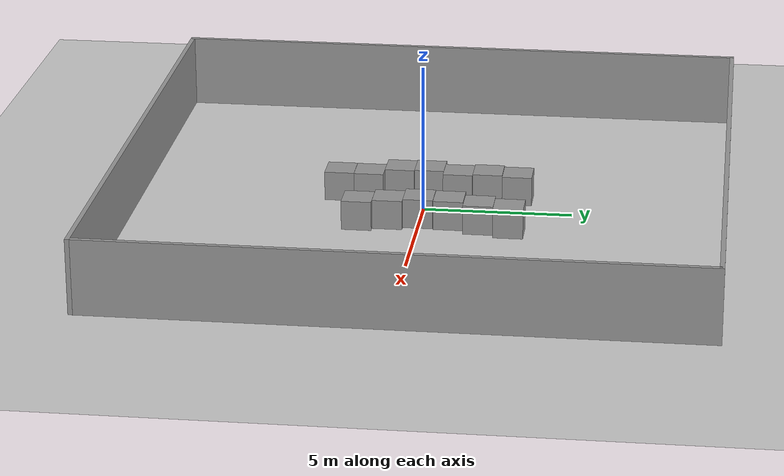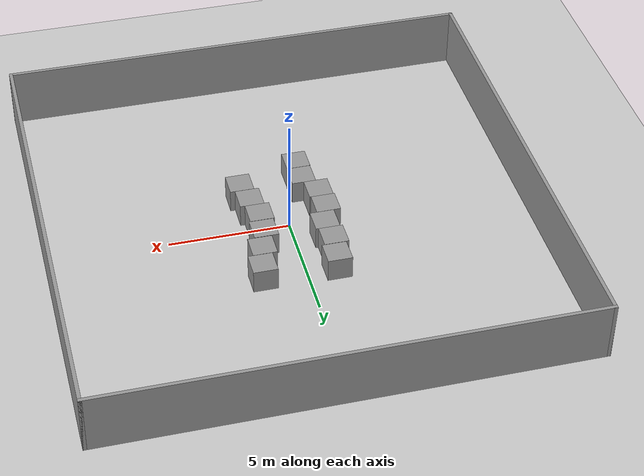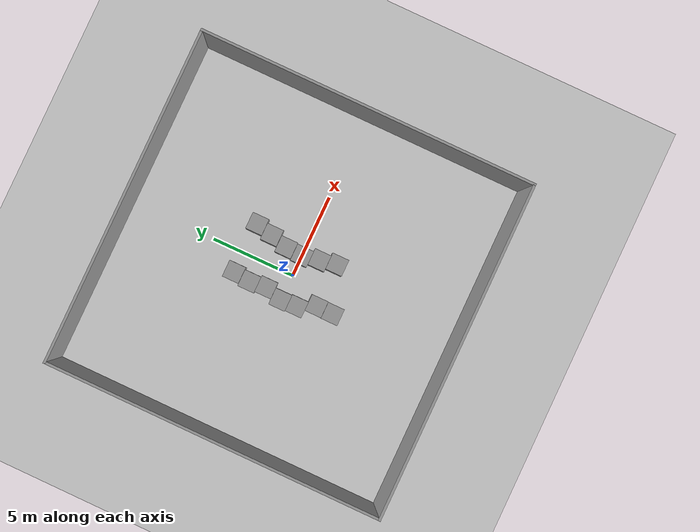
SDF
<sdf version="1.6">
 <world name="default">
  <light name="sun" type="directional">
   <pose>0 0 10 0 -0 0</pose>
   <diffuse>0.8 0.8 0.8 1</diffuse>
   <specular>0.1 0.1 0.1 1</specular>
   <attenuation>
    <range>1000</range>
    <constant>0.9</constant>
    <linear>0.01</linear>
    <quadratic>0.001</quadratic>
   </attenuation>
   <direction>-0.5 0.5 -1</direction>
  </light>
  <model name="ground_plane">
   <static>1</static>
   <link name="link">
    <collision name="collision">
     <geometry><plane><normal>0 0 1</normal><size>100 100</size></plane></geometry>
     <surface><friction><ode><mu>100</mu><mu2>50</mu2></ode></friction></surface>
    </collision>
    <visual name="visual">
     <cast_shadows>0</cast_shadows>
     <geometry><plane><normal>0 0 1</normal><size>100 100</size></plane></geometry>
     <material>
      <script><uri>file://media/materials/scripts/gazebo.material</uri><name>Gazebo/Grey</name></script>
     </material>
    </visual>
   </link>
  </model>
  <gravity>0 0 -9.8</gravity>
  <magnetic_field>6e-06 2.3e-05 -4.2e-05</magnetic_field>
  <atmosphere type="adiabatic"/>
  <physics name="default_physics" default="0" type="ode">
   <max_step_size>0.001</max_step_size>
   <real_time_factor>1</real_time_factor>
   <real_time_update_rate>1000</real_time_update_rate>
  </physics>
  <scene><ambient>0.4 0.4 0.4 1</ambient><background>0.7 0.7 0.7 1</background><shadows>1</shadows></scene>
  <spherical_coordinates>
   <surface_model>EARTH_WGS84</surface_model>
   <latitude_deg>0</latitude_deg>
   <longitude_deg>0</longitude_deg>
   <elevation>0</elevation>
   <heading_deg>0</heading_deg>
  </spherical_coordinates>
  <model name="20x20_walls">
   <pose>0.044518 0.1761 0 0 -0 0</pose>
   <link name="Wall_1">
    <collision name="Wall_1_Collision">
     <geometry><box><size>20 0.15 2.5</size></box></geometry>
     <pose>0 0 1.25 0 -0 0</pose>
    </collision>
    <visual name="Wall_1_Visual">
     <pose>0 0 1.25 0 -0 0</pose>
     <geometry><box><size>20 0.15 2.5</size></box></geometry>
     <material>
      <script><uri>file://media/materials/scripts/gazebo.material</uri><name>Gazebo/Grey</name></script>
      <ambient>0.976471 0.992157 1 1</ambient>
     </material>
     <meta><layer>0</layer></meta>
    </visual>
    <pose>0 9.925 0 0 -0 0</pose>
   </link>
   <link name="Wall_3">
    <collision name="Wall_3_Collision">
     <geometry><box><size>20 0.15 2.5</size></box></geometry>
     <pose>0 0 1.25 0 -0 0</pose>
    </collision>
    <visual name="Wall_3_Visual">
     <pose>0 0 1.25 0 -0 0</pose>
     <geometry><box><size>20 0.15 2.5</size></box></geometry>
     <material>
      <script><uri>file://media/materials/scripts/gazebo.material</uri><name>Gazebo/Grey</name></script>
      <ambient>0.976471 0.992157 1 1</ambient>
     </material>
     <meta><layer>0</layer></meta>
    </visual>
    <pose>9.925 0 0 0 0 -1.5708</pose>
   </link>
   <link name="Wall_4">
    <collision name="Wall_4_Collision">
     <geometry><box><size>20 0.15 2.5</size></box></geometry>
     <pose>0 0 1.25 0 -0 0</pose>
    </collision>
    <visual name="Wall_4_Visual">
     <pose>0 0 1.25 0 -0 0</pose>
     <geometry><box><size>20 0.15 2.5</size></box></geometry>
     <material>
      <script><uri>file://media/materials/scripts/gazebo.material</uri><name>Gazebo/Grey</name></script>
      <ambient>0.976471 0.992157 1 1</ambient>
     </material>
     <meta><layer>0</layer></meta>
    </visual>
    <pose>0 -9.925 0 0 -0 3.14159</pose>
   </link>
   <link name="Wall_5">
    <collision name="Wall_5_Collision">
     <geometry><box><size>20 0.15 2.5</size></box></geometry>
     <pose>0 0 1.25 0 -0 0</pose>
    </collision>
    <visual name="Wall_5_Visual">
     <pose>0 0 1.25 0 -0 0</pose>
     <geometry><box><size>20 0.15 2.5</size></box></geometry>
     <material>
      <script><uri>file://media/materials/scripts/gazebo.material</uri><name>Gazebo/Grey</name></script>
      <ambient>0.976471 0.992157 1 1</ambient>
     </material>
     <meta><layer>0</layer></meta>
    </visual>
    <pose>-9.925 0 0 0 -0 1.5708</pose>
   </link>
   <static>1</static>
  </model>
  <model name="unit_box_0">
   <pose>-1.50901 0.069016 0.499995 -1e-05 -0 0.00027</pose>
   <link name="link">
    <inertial>
     <mass>1</mass>
     <inertia>
      <ixx>0.166667</ixx>
      <ixy>0</ixy>
      <ixz>0</ixz>
      <iyy>0.166667</iyy>
      <iyz>0</iyz>
      <izz>0.166667</izz>
     </inertia>
    </inertial>
    <collision name="collision"><geometry><box><size>1 1 1</size></box></geometry></collision>
    <visual name="visual">
     <geometry><box><size>1 1 1</size></box></geometry>
     <material>
      <script><name>Gazebo/Grey</name><uri>file://media/materials/scripts/gazebo.material</uri></script>
     </material>
    </visual>
   </link>
  </model>
  <model name="unit_box_0_clone">
   <pose>-1.45755 -0.931028 0.499995 1e-05 -0 0.000304</pose>
   <link name="link">
    <inertial>
     <mass>1</mass>
     <inertia>
      <ixx>0.166667</ixx>
      <ixy>0</ixy>
      <ixz>0</ixz>
      <iyy>0.166667</iyy>
      <iyz>0</iyz>
      <izz>0.166667</izz>
     </inertia>
    </inertial>
    <collision name="collision"><geometry><box><size>1 1 1</size></box></geometry></collision>
    <visual name="visual">
     <geometry><box><size>1 1 1</size></box></geometry>
     <material>
      <script><name>Gazebo/Grey</name><uri>file://media/materials/scripts/gazebo.material</uri></script>
     </material>
    </visual>
   </link>
  </model>
  <model name="unit_box_0_clone_0">
   <pose>-0.976052 -1.93088 0.499995 -1e-05 0 0.000304</pose>
   <link name="link">
    <inertial>
     <mass>1</mass>
     <inertia>
      <ixx>0.166667</ixx>
      <ixy>0</ixy>
      <ixz>0</ixz>
      <iyy>0.166667</iyy>
      <iyz>0</iyz>
      <izz>0.166667</izz>
     </inertia>
    </inertial>
    <collision name="collision"><geometry><box><size>1 1 1</size></box></geometry></collision>
    <visual name="visual">
     <geometry><box><size>1 1 1</size></box></geometry>
     <material>
      <script><name>Gazebo/Grey</name><uri>file://media/materials/scripts/gazebo.material</uri></script>
     </material>
    </visual>
   </link>
  </model>
  <model name="unit_box_0_clone_1">
   <pose>-0.992939 -2.93469 0.499995 1e-05 -0 0.00032</pose>
   <link name="link">
    <inertial>
     <mass>1</mass>
     <inertia>
      <ixx>0.166667</ixx>
      <ixy>0</ixy>
      <ixz>0</ixz>
      <iyy>0.166667</iyy>
      <iyz>0</iyz>
      <izz>0.166667</izz>
     </inertia>
    </inertial>
    <collision name="collision"><geometry><box><size>1 1 1</size></box></geometry></collision>
    <visual name="visual">
     <geometry><box><size>1 1 1</size></box></geometry>
     <material>
      <script><name>Gazebo/Grey</name><uri>file://media/materials/scripts/gazebo.material</uri></script>
     </material>
    </visual>
   </link>
  </model>
  <model name="unit_box_0_clone_1_clone">
   <pose>1.23945 0.005599 0.499995 0 -1e-05 0.00032</pose>
   <link name="link">
    <inertial>
     <mass>1</mass>
     <inertia>
      <ixx>0.166667</ixx>
      <ixy>0</ixy>
      <ixz>0</ixz>
      <iyy>0.166667</iyy>
      <iyz>0</iyz>
      <izz>0.166667</izz>
     </inertia>
    </inertial>
    <collision name="collision"><geometry><box><size>1 1 1</size></box></geometry></collision>
    <visual name="visual">
     <geometry><box><size>1 1 1</size></box></geometry>
     <material>
      <script><name>Gazebo/Grey</name><uri>file://media/materials/scripts/gazebo.material</uri></script>
     </material>
    </visual>
   </link>
  </model>
  <model name="unit_box_0_clone_1_clone_0">
   <pose>1.42958 -0.994355 0.499995 0 1e-05 0.00032</pose>
   <link name="link">
    <inertial>
     <mass>1</mass>
     <inertia>
      <ixx>0.166667</ixx>
      <ixy>0</ixy>
      <ixz>0</ixz>
      <iyy>0.166667</iyy>
      <iyz>0</iyz>
      <izz>0.166667</izz>
     </inertia>
    </inertial>
    <collision name="collision"><geometry><box><size>1 1 1</size></box></geometry></collision>
    <visual name="visual">
     <geometry><box><size>1 1 1</size></box></geometry>
     <material>
      <script><name>Gazebo/Grey</name><uri>file://media/materials/scripts/gazebo.material</uri></script>
     </material>
    </visual>
   </link>
  </model>
  <model name="unit_box_0_clone_1_clone_1">
   <pose>1.62481 -1.99623 0.499995 0 1e-05 0.00032</pose>
   <link name="link">
    <inertial>
     <mass>1</mass>
     <inertia>
      <ixx>0.166667</ixx>
      <ixy>0</ixy>
      <ixz>0</ixz>
      <iyy>0.166667</iyy>
      <iyz>0</iyz>
      <izz>0.166667</izz>
     </inertia>
    </inertial>
    <collision name="collision"><geometry><box><size>1 1 1</size></box></geometry></collision>
    <visual name="visual">
     <geometry><box><size>1 1 1</size></box></geometry>
     <material>
      <script><name>Gazebo/Grey</name><uri>file://media/materials/scripts/gazebo.material</uri></script>
     </material>
    </visual>
   </link>
  </model>
  <model name="unit_box_0_clone_1_clone_2">
   <pose>-1.21081 1.07249 0.499995 9e-06 -0 0.000309</pose>
   <link name="link">
    <inertial>
     <mass>1</mass>
     <inertia>
      <ixx>0.166667</ixx>
      <ixy>0</ixy>
      <ixz>0</ixz>
      <iyy>0.166667</iyy>
      <iyz>0</iyz>
      <izz>0.166667</izz>
     </inertia>
    </inertial>
    <collision name="collision"><geometry><box><size>1 1 1</size></box></geometry></collision>
    <visual name="visual">
     <geometry><box><size>1 1 1</size></box></geometry>
     <material>
      <script><name>Gazebo/Grey</name><uri>file://media/materials/scripts/gazebo.material</uri></script>
     </material>
    </visual>
   </link>
  </model>
  <model name="unit_box_0_clone_1_clone_3">
   <pose>-1.31412 2.07247 0.499995 -1e-05 -0 0.000313</pose>
   <link name="link">
    <inertial>
     <mass>1</mass>
     <inertia>
      <ixx>0.166667</ixx>
      <ixy>0</ixy>
      <ixz>0</ixz>
      <iyy>0.166667</iyy>
      <iyz>0</iyz>
      <izz>0.166667</izz>
     </inertia>
    </inertial>
    <collision name="collision"><geometry><box><size>1 1 1</size></box></geometry></collision>
    <visual name="visual">
     <geometry><box><size>1 1 1</size></box></geometry>
     <material>
      <script><name>Gazebo/Grey</name><uri>file://media/materials/scripts/gazebo.material</uri></script>
     </material>
    </visual>
   </link>
  </model>
  <model name="unit_box_0_clone_1_clone_4">
   <pose>-1.19385 3.0832 0.499995 0 1e-05 0.00032</pose>
   <link name="link">
    <inertial>
     <mass>1</mass>
     <inertia>
      <ixx>0.166667</ixx>
      <ixy>0</ixy>
      <ixz>0</ixz>
      <iyy>0.166667</iyy>
      <iyz>0</iyz>
      <izz>0.166667</izz>
     </inertia>
    </inertial>
    <collision name="collision"><geometry><box><size>1 1 1</size></box></geometry></collision>
    <visual name="visual">
     <geometry><box><size>1 1 1</size></box></geometry>
     <material>
      <script><name>Gazebo/Grey</name><uri>file://media/materials/scripts/gazebo.material</uri></script>
     </material>
    </visual>
   </link>
  </model>
  <model name="unit_box_0_clone_1_clone_5">
   <pose>1.29526 1.01561 0.499995 -1e-05 -0 0.00032</pose>
   <link name="link">
    <inertial>
     <mass>1</mass>
     <inertia>
      <ixx>0.166667</ixx>
      <ixy>0</ixy>
      <ixz>0</ixz>
      <iyy>0.166667</iyy>
      <iyz>0</iyz>
      <izz>0.166667</izz>
     </inertia>
    </inertial>
    <collision name="collision"><geometry><box><size>1 1 1</size></box></geometry></collision>
    <visual name="visual">
     <geometry><box><size>1 1 1</size></box></geometry>
     <material>
      <script><name>Gazebo/Grey</name><uri>file://media/materials/scripts/gazebo.material</uri></script>
     </material>
    </visual>
   </link>
  </model>
  <model name="unit_box_0_clone_1_clone_6">
   <pose>1.58766 2.03475 0.499995 0 1e-05 0.00032</pose>
   <link name="link">
    <inertial>
     <mass>1</mass>
     <inertia>
      <ixx>0.166667</ixx>
      <ixy>0</ixy>
      <ixz>0</ixz>
      <iyy>0.166667</iyy>
      <iyz>0</iyz>
      <izz>0.166667</izz>
     </inertia>
    </inertial>
    <collision name="collision"><geometry><box><size>1 1 1</size></box></geometry></collision>
    <visual name="visual">
     <geometry><box><size>1 1 1</size></box></geometry>
     <material>
      <script><name>Gazebo/Grey</name><uri>file://media/materials/scripts/gazebo.material</uri></script>
     </material>
    </visual>
   </link>
  </model>
  <model name="unit_box_0_clone_1_clone_7">
   <pose>1.80243 3.04105 0.499995 1e-05 -0 0.00032</pose>
   <link name="link">
    <inertial>
     <mass>1</mass>
     <inertia>
      <ixx>0.166667</ixx>
      <ixy>0</ixy>
      <ixz>0</ixz>
      <iyy>0.166667</iyy>
      <iyz>0</iyz>
      <izz>0.166667</izz>
     </inertia>
    </inertial>
    <collision name="collision"><geometry><box><size>1 1 1</size></box></geometry></collision>
    <visual name="visual">
     <geometry><box><size>1 1 1</size></box></geometry>
     <material>
      <script><name>Gazebo/Grey</name><uri>file://media/materials/scripts/gazebo.material</uri></script>
     </material>
    </visual>
   </link>
  </model>
 </world>
</sdf>
